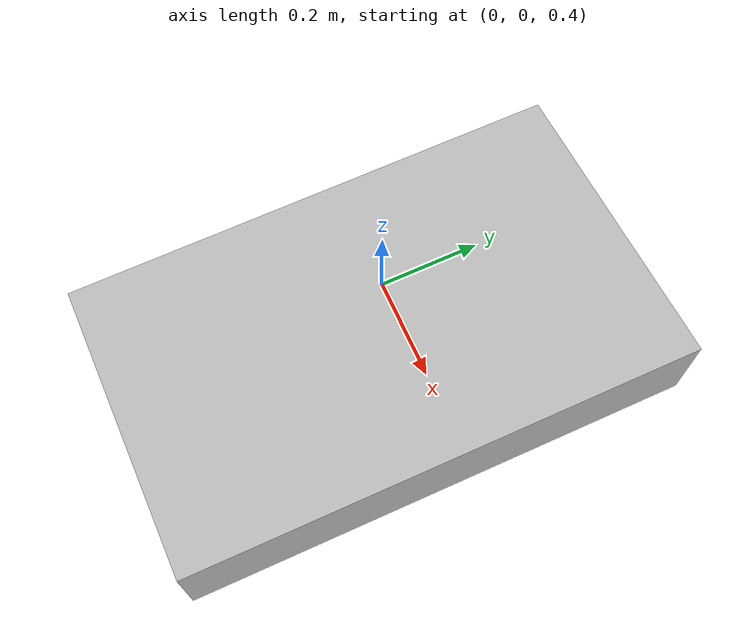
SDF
<?xml version="1.0"?>
<sdf version="1.6">
  <model name="abu_slope">
      <pose>0 0 0  0 0 0</pose>
      <static>true</static>
      <link name="body">
        <visual name="visual">
          <geometry>
            <mesh><uri>model://abu_slope/meshes/abu_slope.dae</uri></mesh>
          </geometry>
        </visual>
      </link>
 </model>
</sdf>
